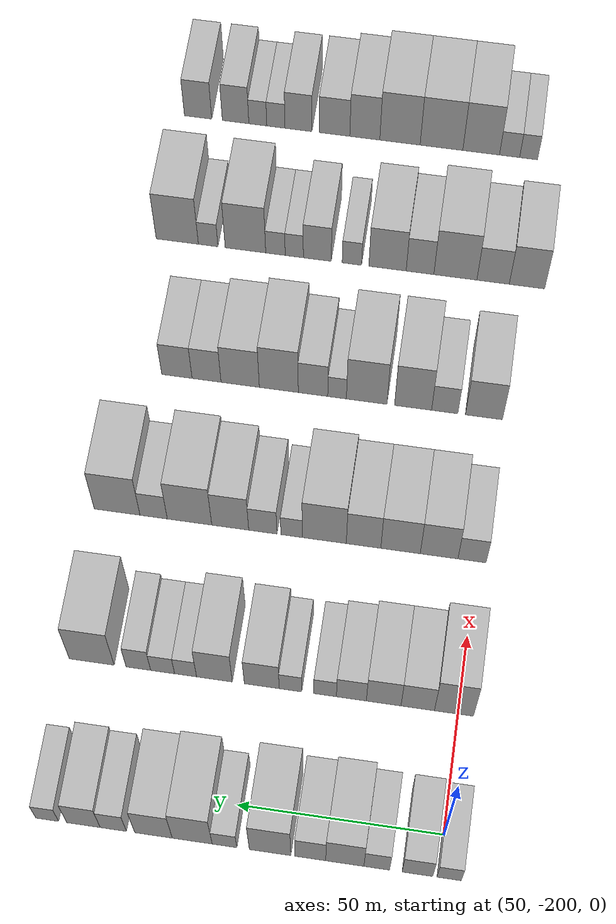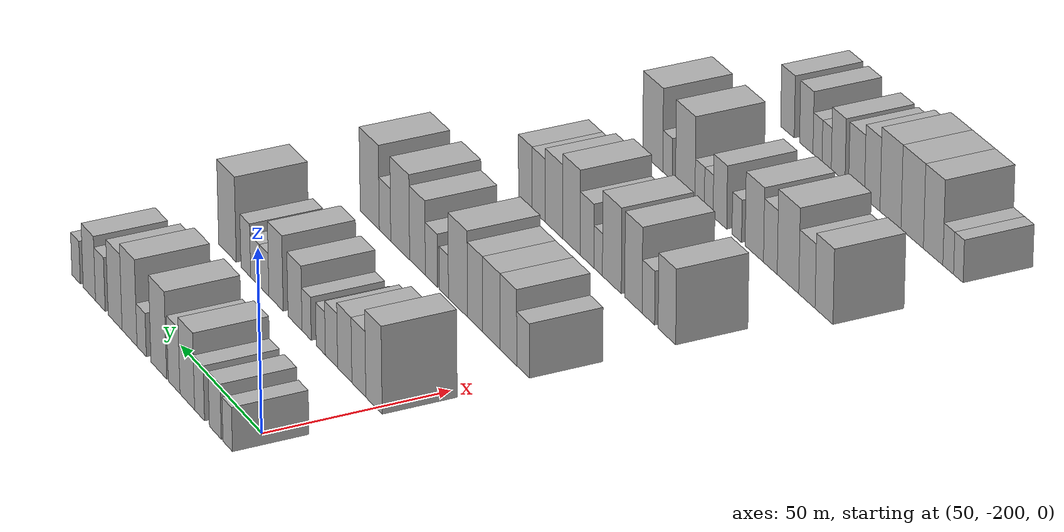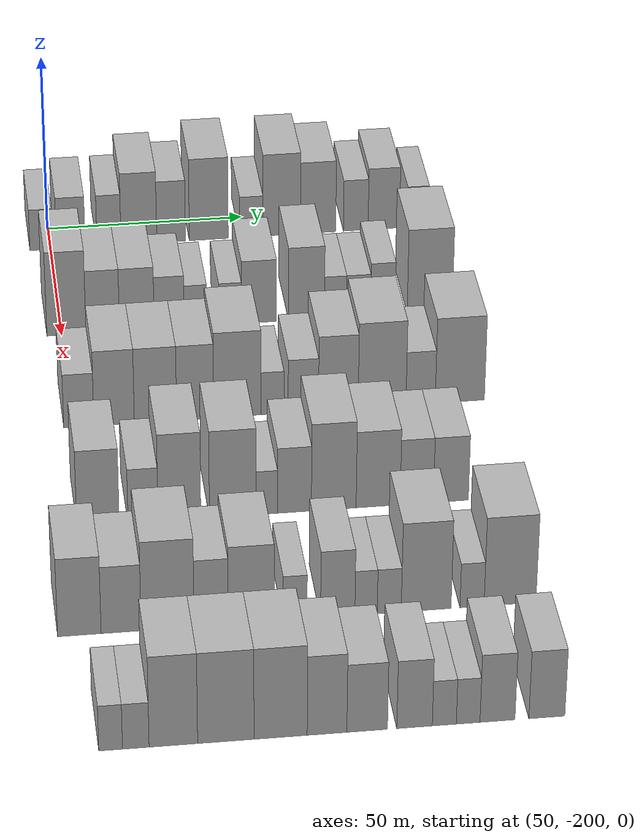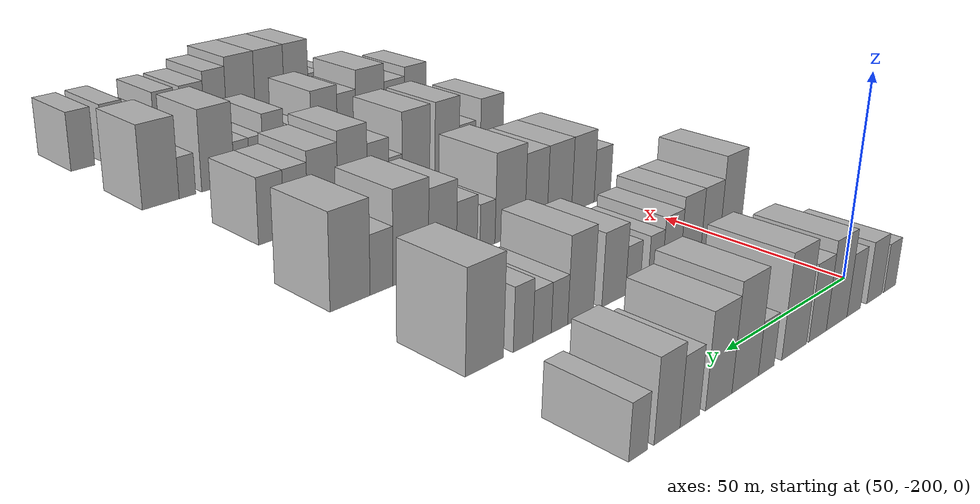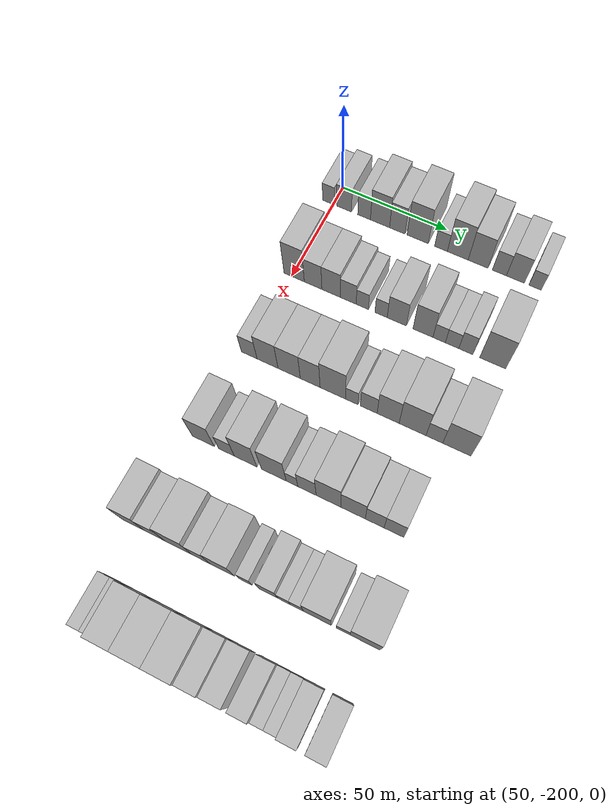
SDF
<sdf version="1.6">
 <world name="default">
  <model name="building_47">
   <static>1</static>
   <pose>50.0000 -202.3374 0 0.000000 0.000000 0.000000</pose>
   <link name="link">
    <pose>0 0 6.00 0 0 0</pose>
    <collision name="collision"><geometry><box><size>20.0000 5.7810 12.0000</size></box></geometry></collision>
    <visual name="visual">
     <cast_shadows>0</cast_shadows>
     <geometry><box><size>20.0000 5.7810 12.0000</size></box></geometry>
     <material>
      <script>
       <uri>model://HANNAS_wall/materials/scripts</uri>
       <uri>model://HANNAS_wall/materials/textures</uri>
       <name>vrc/HANNAS_wall</name>
      </script>
     </material>
    </visual>
   </link>
  </model>
  <model name="building_48">
   <static>1</static>
   <pose>50.0000 -194.7941 0 0.000000 0.000000 0.000000</pose>
   <link name="link">
    <pose>0 0 7.50 0 0 0</pose>
    <collision name="collision"><geometry><box><size>20.0000 7.3055 15.0000</size></box></geometry></collision>
    <visual name="visual">
     <cast_shadows>0</cast_shadows>
     <geometry><box><size>20.0000 7.3055 15.0000</size></box></geometry>
     <material>
      <script>
       <uri>model://HANNAS_wall/materials/scripts</uri>
       <uri>model://HANNAS_wall/materials/textures</uri>
       <name>vrc/HANNAS_wall</name>
      </script>
     </material>
    </visual>
   </link>
  </model>
  <model name="building_49">
   <static>1</static>
   <pose>50.0000 -185.0760 0 0.000000 0.000000 0.000000</pose>
   <link name="link">
    <pose>0 0 7.50 0 0 0</pose>
    <collision name="collision"><geometry><box><size>20.0000 6.1306 15.0000</size></box></geometry></collision>
    <visual name="visual">
     <cast_shadows>0</cast_shadows>
     <geometry><box><size>20.0000 6.1306 15.0000</size></box></geometry>
     <material>
      <script>
       <uri>model://HANNAS_wall/materials/scripts</uri>
       <uri>model://HANNAS_wall/materials/textures</uri>
       <name>vrc/HANNAS_wall</name>
      </script>
     </material>
    </visual>
   </link>
  </model>
  <model name="building_50">
   <static>1</static>
   <pose>50.0000 -177.4437 0 0.000000 0.000000 0.000000</pose>
   <link name="link">
    <pose>0 0 10.50 0 0 0</pose>
    <collision name="collision"><geometry><box><size>20.0000 9.1340 21.0000</size></box></geometry></collision>
    <visual name="visual">
     <cast_shadows>0</cast_shadows>
     <geometry><box><size>20.0000 9.1340 21.0000</size></box></geometry>
     <material>
      <script>
       <uri>model://HANNAS_wall/materials/scripts</uri>
       <uri>model://HANNAS_wall/materials/textures</uri>
       <name>vrc/HANNAS_wall</name>
      </script>
     </material>
    </visual>
   </link>
  </model>
  <model name="building_51">
   <static>1</static>
   <pose>50.0000 -169.1951 0 0.000000 0.000000 0.000000</pose>
   <link name="link">
    <pose>0 0 9.00 0 0 0</pose>
    <collision name="collision"><geometry><box><size>20.0000 7.3631 18.0000</size></box></geometry></collision>
    <visual name="visual">
     <cast_shadows>0</cast_shadows>
     <geometry><box><size>20.0000 7.3631 18.0000</size></box></geometry>
     <material>
      <script>
       <uri>model://HANNAS_wall/materials/scripts</uri>
       <uri>model://HANNAS_wall/materials/textures</uri>
       <name>vrc/HANNAS_wall</name>
      </script>
     </material>
    </visual>
   </link>
  </model>
  <model name="building_52">
   <static>1</static>
   <pose>50.0000 -159.5304 0 0.000000 0.000000 0.000000</pose>
   <link name="link">
    <pose>0 0 12.00 0 0 0</pose>
    <collision name="collision"><geometry><box><size>20.0000 9.9664 24.0000</size></box></geometry></collision>
    <visual name="visual">
     <cast_shadows>0</cast_shadows>
     <geometry><box><size>20.0000 9.9664 24.0000</size></box></geometry>
     <material>
      <script>
       <uri>model://HANNAS_wall/materials/scripts</uri>
       <uri>model://HANNAS_wall/materials/textures</uri>
       <name>vrc/HANNAS_wall</name>
      </script>
     </material>
    </visual>
   </link>
  </model>
  <model name="building_53">
   <static>1</static>
   <pose>50.0000 -148.5701 0 0.000000 0.000000 0.000000</pose>
   <link name="link">
    <pose>0 0 6.00 0 0 0</pose>
    <collision name="collision"><geometry><box><size>20.0000 5.9542 12.0000</size></box></geometry></collision>
    <visual name="visual">
     <cast_shadows>0</cast_shadows>
     <geometry><box><size>20.0000 5.9542 12.0000</size></box></geometry>
     <material>
      <script>
       <uri>model://HANNAS_wall/materials/scripts</uri>
       <uri>model://HANNAS_wall/materials/textures</uri>
       <name>vrc/HANNAS_wall</name>
      </script>
     </material>
    </visual>
   </link>
  </model>
  <model name="building_54">
   <static>1</static>
   <pose>50.0000 -140.7687 0 0.000000 0.000000 0.000000</pose>
   <link name="link">
    <pose>0 0 12.00 0 0 0</pose>
    <collision name="collision"><geometry><box><size>20.0000 9.6486 24.0000</size></box></geometry></collision>
    <visual name="visual">
     <cast_shadows>0</cast_shadows>
     <geometry><box><size>20.0000 9.6486 24.0000</size></box></geometry>
     <material>
      <script>
       <uri>model://HANNAS_wall/materials/scripts</uri>
       <uri>model://HANNAS_wall/materials/textures</uri>
       <name>vrc/HANNAS_wall</name>
      </script>
     </material>
    </visual>
   </link>
  </model>
  <model name="building_55">
   <static>1</static>
   <pose>50.0000 -131.4038 0 0.000000 0.000000 0.000000</pose>
   <link name="link">
    <pose>0 0 10.50 0 0 0</pose>
    <collision name="collision"><geometry><box><size>20.0000 9.0811 21.0000</size></box></geometry></collision>
    <visual name="visual">
     <cast_shadows>0</cast_shadows>
     <geometry><box><size>20.0000 9.0811 21.0000</size></box></geometry>
     <material>
      <script>
       <uri>model://HANNAS_wall/materials/scripts</uri>
       <uri>model://HANNAS_wall/materials/textures</uri>
       <name>vrc/HANNAS_wall</name>
      </script>
     </material>
    </visual>
   </link>
  </model>
  <model name="building_56">
   <static>1</static>
   <pose>50.0000 -121.6755 0 0.000000 0.000000 0.000000</pose>
   <link name="link">
    <pose>0 0 7.50 0 0 0</pose>
    <collision name="collision"><geometry><box><size>20.0000 6.3754 15.0000</size></box></geometry></collision>
    <visual name="visual">
     <cast_shadows>0</cast_shadows>
     <geometry><box><size>20.0000 6.3754 15.0000</size></box></geometry>
     <material>
      <script>
       <uri>model://HANNAS_wall/materials/scripts</uri>
       <uri>model://HANNAS_wall/materials/textures</uri>
       <name>vrc/HANNAS_wall</name>
      </script>
     </material>
    </visual>
   </link>
  </model>
  <model name="building_57">
   <static>1</static>
   <pose>50.0000 -114.4243 0 0.000000 0.000000 0.000000</pose>
   <link name="link">
    <pose>0 0 9.00 0 0 0</pose>
    <collision name="collision"><geometry><box><size>20.0000 8.1271 18.0000</size></box></geometry></collision>
    <visual name="visual">
     <cast_shadows>0</cast_shadows>
     <geometry><box><size>20.0000 8.1271 18.0000</size></box></geometry>
     <material>
      <script>
       <uri>model://HANNAS_wall/materials/scripts</uri>
       <uri>model://HANNAS_wall/materials/textures</uri>
       <name>vrc/HANNAS_wall</name>
      </script>
     </material>
    </visual>
   </link>
  </model>
  <model name="building_58">
   <static>1</static>
   <pose>50.0000 -105.5826 0 0.000000 0.000000 0.000000</pose>
   <link name="link">
    <pose>0 0 6.00 0 0 0</pose>
    <collision name="collision"><geometry><box><size>20.0000 5.5562 12.0000</size></box></geometry></collision>
    <visual name="visual">
     <cast_shadows>0</cast_shadows>
     <geometry><box><size>20.0000 5.5562 12.0000</size></box></geometry>
     <material>
      <script>
       <uri>model://HANNAS_wall/materials/scripts</uri>
       <uri>model://HANNAS_wall/materials/textures</uri>
       <name>vrc/HANNAS_wall</name>
      </script>
     </material>
    </visual>
   </link>
  </model>
  <model name="building_185">
   <static>1</static>
   <pose>90.0000 -198.8361 0 0.000000 0.000000 0.000000</pose>
   <link name="link">
    <pose>0 0 12.00 0 0 0</pose>
    <collision name="collision"><geometry><box><size>20.0000 9.6117 24.0000</size></box></geometry></collision>
    <visual name="visual">
     <cast_shadows>0</cast_shadows>
     <geometry><box><size>20.0000 9.6117 24.0000</size></box></geometry>
     <material>
      <script>
       <uri>model://HANNAS_wall/materials/scripts</uri>
       <uri>model://HANNAS_wall/materials/textures</uri>
       <name>vrc/HANNAS_wall</name>
      </script>
     </material>
    </visual>
   </link>
  </model>
  <model name="building_186">
   <static>1</static>
   <pose>90.0000 -189.9027 0 0.000000 0.000000 0.000000</pose>
   <link name="link">
    <pose>0 0 9.00 0 0 0</pose>
    <collision name="collision"><geometry><box><size>20.0000 8.2553 18.0000</size></box></geometry></collision>
    <visual name="visual">
     <cast_shadows>0</cast_shadows>
     <geometry><box><size>20.0000 8.2553 18.0000</size></box></geometry>
     <material>
      <script>
       <uri>model://HANNAS_wall/materials/scripts</uri>
       <uri>model://HANNAS_wall/materials/textures</uri>
       <name>vrc/HANNAS_wall</name>
      </script>
     </material>
    </visual>
   </link>
  </model>
  <model name="building_187">
   <static>1</static>
   <pose>90.0000 -181.4926 0 0.000000 0.000000 0.000000</pose>
   <link name="link">
    <pose>0 0 9.00 0 0 0</pose>
    <collision name="collision"><geometry><box><size>20.0000 8.5650 18.0000</size></box></geometry></collision>
    <visual name="visual">
     <cast_shadows>0</cast_shadows>
     <geometry><box><size>20.0000 8.5650 18.0000</size></box></geometry>
     <material>
      <script>
       <uri>model://HANNAS_wall/materials/scripts</uri>
       <uri>model://HANNAS_wall/materials/textures</uri>
       <name>vrc/HANNAS_wall</name>
      </script>
     </material>
    </visual>
   </link>
  </model>
  <model name="building_188">
   <static>1</static>
   <pose>90.0000 -173.5061 0 0.000000 0.000000 0.000000</pose>
   <link name="link">
    <pose>0 0 7.50 0 0 0</pose>
    <collision name="collision"><geometry><box><size>20.0000 7.4079 15.0000</size></box></geometry></collision>
    <visual name="visual">
     <cast_shadows>0</cast_shadows>
     <geometry><box><size>20.0000 7.4079 15.0000</size></box></geometry>
     <material>
      <script>
       <uri>model://HANNAS_wall/materials/scripts</uri>
       <uri>model://HANNAS_wall/materials/textures</uri>
       <name>vrc/HANNAS_wall</name>
      </script>
     </material>
    </visual>
   </link>
  </model>
  <model name="building_189">
   <static>1</static>
   <pose>90.0000 -166.9955 0 0.000000 0.000000 0.000000</pose>
   <link name="link">
    <pose>0 0 6.00 0 0 0</pose>
    <collision name="collision"><geometry><box><size>20.0000 5.6134 12.0000</size></box></geometry></collision>
    <visual name="visual">
     <cast_shadows>0</cast_shadows>
     <geometry><box><size>20.0000 5.6134 12.0000</size></box></geometry>
     <material>
      <script>
       <uri>model://HANNAS_wall/materials/scripts</uri>
       <uri>model://HANNAS_wall/materials/textures</uri>
       <name>vrc/HANNAS_wall</name>
      </script>
     </material>
    </visual>
   </link>
  </model>
  <model name="building_190">
   <static>1</static>
   <pose>90.0000 -158.3928 0 0.000000 0.000000 0.000000</pose>
   <link name="link">
    <pose>0 0 6.00 0 0 0</pose>
    <collision name="collision"><geometry><box><size>20.0000 5.5920 12.0000</size></box></geometry></collision>
    <visual name="visual">
     <cast_shadows>0</cast_shadows>
     <geometry><box><size>20.0000 5.5920 12.0000</size></box></geometry>
     <material>
      <script>
       <uri>model://HANNAS_wall/materials/scripts</uri>
       <uri>model://HANNAS_wall/materials/textures</uri>
       <name>vrc/HANNAS_wall</name>
      </script>
     </material>
    </visual>
   </link>
  </model>
  <model name="building_191">
   <static>1</static>
   <pose>90.0000 -151.2549 0 0.000000 0.000000 0.000000</pose>
   <link name="link">
    <pose>0 0 9.00 0 0 0</pose>
    <collision name="collision"><geometry><box><size>20.0000 8.6836 18.0000</size></box></geometry></collision>
    <visual name="visual">
     <cast_shadows>0</cast_shadows>
     <geometry><box><size>20.0000 8.6836 18.0000</size></box></geometry>
     <material>
      <script>
       <uri>model://HANNAS_wall/materials/scripts</uri>
       <uri>model://HANNAS_wall/materials/textures</uri>
       <name>vrc/HANNAS_wall</name>
      </script>
     </material>
    </visual>
   </link>
  </model>
  <model name="building_192">
   <static>1</static>
   <pose>90.0000 -139.4484 0 0.000000 0.000000 0.000000</pose>
   <link name="link">
    <pose>0 0 10.50 0 0 0</pose>
    <collision name="collision"><geometry><box><size>20.0000 8.9294 21.0000</size></box></geometry></collision>
    <visual name="visual">
     <cast_shadows>0</cast_shadows>
     <geometry><box><size>20.0000 8.9294 21.0000</size></box></geometry>
     <material>
      <script>
       <uri>model://HANNAS_wall/materials/scripts</uri>
       <uri>model://HANNAS_wall/materials/textures</uri>
       <name>vrc/HANNAS_wall</name>
      </script>
     </material>
    </visual>
   </link>
  </model>
  <model name="building_193">
   <static>1</static>
   <pose>90.0000 -132.2316 0 0.000000 0.000000 0.000000</pose>
   <link name="link">
    <pose>0 0 6.00 0 0 0</pose>
    <collision name="collision"><geometry><box><size>20.0000 5.5043 12.0000</size></box></geometry></collision>
    <visual name="visual">
     <cast_shadows>0</cast_shadows>
     <geometry><box><size>20.0000 5.5043 12.0000</size></box></geometry>
     <material>
      <script>
       <uri>model://HANNAS_wall/materials/scripts</uri>
       <uri>model://HANNAS_wall/materials/textures</uri>
       <name>vrc/HANNAS_wall</name>
      </script>
     </material>
    </visual>
   </link>
  </model>
  <model name="building_194">
   <static>1</static>
   <pose>90.0000 -126.4811 0 0.000000 0.000000 0.000000</pose>
   <link name="link">
    <pose>0 0 6.00 0 0 0</pose>
    <collision name="collision"><geometry><box><size>20.0000 5.9968 12.0000</size></box></geometry></collision>
    <visual name="visual">
     <cast_shadows>0</cast_shadows>
     <geometry><box><size>20.0000 5.9968 12.0000</size></box></geometry>
     <material>
      <script>
       <uri>model://HANNAS_wall/materials/scripts</uri>
       <uri>model://HANNAS_wall/materials/textures</uri>
       <name>vrc/HANNAS_wall</name>
      </script>
     </material>
    </visual>
   </link>
  </model>
  <model name="building_195">
   <static>1</static>
   <pose>90.0000 -120.4056 0 0.000000 0.000000 0.000000</pose>
   <link name="link">
    <pose>0 0 7.50 0 0 0</pose>
    <collision name="collision"><geometry><box><size>20.0000 6.1540 15.0000</size></box></geometry></collision>
    <visual name="visual">
     <cast_shadows>0</cast_shadows>
     <geometry><box><size>20.0000 6.1540 15.0000</size></box></geometry>
     <material>
      <script>
       <uri>model://HANNAS_wall/materials/scripts</uri>
       <uri>model://HANNAS_wall/materials/textures</uri>
       <name>vrc/HANNAS_wall</name>
      </script>
     </material>
    </visual>
   </link>
  </model>
  <model name="building_196">
   <static>1</static>
   <pose>90.0000 -108.6854 0 0.000000 0.000000 0.000000</pose>
   <link name="link">
    <pose>0 0 12.00 0 0 0</pose>
    <collision name="collision"><geometry><box><size>20.0000 11.2864 24.0000</size></box></geometry></collision>
    <visual name="visual">
     <cast_shadows>0</cast_shadows>
     <geometry><box><size>20.0000 11.2864 24.0000</size></box></geometry>
     <material>
      <script>
       <uri>model://HANNAS_wall/materials/scripts</uri>
       <uri>model://HANNAS_wall/materials/textures</uri>
       <name>vrc/HANNAS_wall</name>
      </script>
     </material>
    </visual>
   </link>
  </model>
  <model name="building_322">
   <static>1</static>
   <pose>130.0000 -198.7988 0 0.000000 0.000000 0.000000</pose>
   <link name="link">
    <pose>0 0 7.50 0 0 0</pose>
    <collision name="collision"><geometry><box><size>20.0000 7.1736 15.0000</size></box></geometry></collision>
    <visual name="visual">
     <cast_shadows>0</cast_shadows>
     <geometry><box><size>20.0000 7.1736 15.0000</size></box></geometry>
     <material>
      <script>
       <uri>model://HANNAS_wall/materials/scripts</uri>
       <uri>model://HANNAS_wall/materials/textures</uri>
       <name>vrc/HANNAS_wall</name>
      </script>
     </material>
    </visual>
   </link>
  </model>
  <model name="building_323">
   <static>1</static>
   <pose>130.0000 -190.4127 0 0.000000 0.000000 0.000000</pose>
   <link name="link">
    <pose>0 0 10.50 0 0 0</pose>
    <collision name="collision"><geometry><box><size>20.0000 9.5984 21.0000</size></box></geometry></collision>
    <visual name="visual">
     <cast_shadows>0</cast_shadows>
     <geometry><box><size>20.0000 9.5984 21.0000</size></box></geometry>
     <material>
      <script>
       <uri>model://HANNAS_wall/materials/scripts</uri>
       <uri>model://HANNAS_wall/materials/textures</uri>
       <name>vrc/HANNAS_wall</name>
      </script>
     </material>
    </visual>
   </link>
  </model>
  <model name="building_324">
   <static>1</static>
   <pose>130.0000 -180.5781 0 0.000000 0.000000 0.000000</pose>
   <link name="link">
    <pose>0 0 10.50 0 0 0</pose>
    <collision name="collision"><geometry><box><size>20.0000 10.0708 21.0000</size></box></geometry></collision>
    <visual name="visual">
     <cast_shadows>0</cast_shadows>
     <geometry><box><size>20.0000 10.0708 21.0000</size></box></geometry>
     <material>
      <script>
       <uri>model://HANNAS_wall/materials/scripts</uri>
       <uri>model://HANNAS_wall/materials/textures</uri>
       <name>vrc/HANNAS_wall</name>
      </script>
     </material>
    </visual>
   </link>
  </model>
  <model name="building_325">
   <static>1</static>
   <pose>130.0000 -171.1222 0 0.000000 0.000000 0.000000</pose>
   <link name="link">
    <pose>0 0 10.50 0 0 0</pose>
    <collision name="collision"><geometry><box><size>20.0000 8.8410 21.0000</size></box></geometry></collision>
    <visual name="visual">
     <cast_shadows>0</cast_shadows>
     <geometry><box><size>20.0000 8.8410 21.0000</size></box></geometry>
     <material>
      <script>
       <uri>model://HANNAS_wall/materials/scripts</uri>
       <uri>model://HANNAS_wall/materials/textures</uri>
       <name>vrc/HANNAS_wall</name>
      </script>
     </material>
    </visual>
   </link>
  </model>
  <model name="building_326">
   <static>1</static>
   <pose>130.0000 -161.0546 0 0.000000 0.000000 0.000000</pose>
   <link name="link">
    <pose>0 0 12.00 0 0 0</pose>
    <collision name="collision"><geometry><box><size>20.0000 11.2940 24.0000</size></box></geometry></collision>
    <visual name="visual">
     <cast_shadows>0</cast_shadows>
     <geometry><box><size>20.0000 11.2940 24.0000</size></box></geometry>
     <material>
      <script>
       <uri>model://HANNAS_wall/materials/scripts</uri>
       <uri>model://HANNAS_wall/materials/textures</uri>
       <name>vrc/HANNAS_wall</name>
      </script>
     </material>
    </visual>
   </link>
  </model>
  <model name="building_327">
   <static>1</static>
   <pose>130.0000 -152.6547 0 0.000000 0.000000 0.000000</pose>
   <link name="link">
    <pose>0 0 6.00 0 0 0</pose>
    <collision name="collision"><geometry><box><size>20.0000 5.5058 12.0000</size></box></geometry></collision>
    <visual name="visual">
     <cast_shadows>0</cast_shadows>
     <geometry><box><size>20.0000 5.5058 12.0000</size></box></geometry>
     <material>
      <script>
       <uri>model://HANNAS_wall/materials/scripts</uri>
       <uri>model://HANNAS_wall/materials/textures</uri>
       <name>vrc/HANNAS_wall</name>
      </script>
     </material>
    </visual>
   </link>
  </model>
  <model name="building_328">
   <static>1</static>
   <pose>130.0000 -145.2543 0 0.000000 0.000000 0.000000</pose>
   <link name="link">
    <pose>0 0 7.50 0 0 0</pose>
    <collision name="collision"><geometry><box><size>20.0000 7.2951 15.0000</size></box></geometry></collision>
    <visual name="visual">
     <cast_shadows>0</cast_shadows>
     <geometry><box><size>20.0000 7.2951 15.0000</size></box></geometry>
     <material>
      <script>
       <uri>model://HANNAS_wall/materials/scripts</uri>
       <uri>model://HANNAS_wall/materials/textures</uri>
       <name>vrc/HANNAS_wall</name>
      </script>
     </material>
    </visual>
   </link>
  </model>
  <model name="building_329">
   <static>1</static>
   <pose>130.0000 -136.8446 0 0.000000 0.000000 0.000000</pose>
   <link name="link">
    <pose>0 0 10.50 0 0 0</pose>
    <collision name="collision"><geometry><box><size>20.0000 9.5242 21.0000</size></box></geometry></collision>
    <visual name="visual">
     <cast_shadows>0</cast_shadows>
     <geometry><box><size>20.0000 9.5242 21.0000</size></box></geometry>
     <material>
      <script>
       <uri>model://HANNAS_wall/materials/scripts</uri>
       <uri>model://HANNAS_wall/materials/textures</uri>
       <name>vrc/HANNAS_wall</name>
      </script>
     </material>
    </visual>
   </link>
  </model>
  <model name="building_330">
   <static>1</static>
   <pose>130.0000 -126.3219 0 0.000000 0.000000 0.000000</pose>
   <link name="link">
    <pose>0 0 12.00 0 0 0</pose>
    <collision name="collision"><geometry><box><size>20.0000 11.5212 24.0000</size></box></geometry></collision>
    <visual name="visual">
     <cast_shadows>0</cast_shadows>
     <geometry><box><size>20.0000 11.5212 24.0000</size></box></geometry>
     <material>
      <script>
       <uri>model://HANNAS_wall/materials/scripts</uri>
       <uri>model://HANNAS_wall/materials/textures</uri>
       <name>vrc/HANNAS_wall</name>
      </script>
     </material>
    </visual>
   </link>
  </model>
  <model name="building_331">
   <static>1</static>
   <pose>130.0000 -117.0253 0 0.000000 0.000000 0.000000</pose>
   <link name="link">
    <pose>0 0 7.50 0 0 0</pose>
    <collision name="collision"><geometry><box><size>20.0000 7.0721 15.0000</size></box></geometry></collision>
    <visual name="visual">
     <cast_shadows>0</cast_shadows>
     <geometry><box><size>20.0000 7.0721 15.0000</size></box></geometry>
     <material>
      <script>
       <uri>model://HANNAS_wall/materials/scripts</uri>
       <uri>model://HANNAS_wall/materials/textures</uri>
       <name>vrc/HANNAS_wall</name>
      </script>
     </material>
    </visual>
   </link>
  </model>
  <model name="building_332">
   <static>1</static>
   <pose>130.0000 -107.5536 0 0.000000 0.000000 0.000000</pose>
   <link name="link">
    <pose>0 0 12.00 0 0 0</pose>
    <collision name="collision"><geometry><box><size>20.0000 11.8712 24.0000</size></box></geometry></collision>
    <visual name="visual">
     <cast_shadows>0</cast_shadows>
     <geometry><box><size>20.0000 11.8712 24.0000</size></box></geometry>
     <material>
      <script>
       <uri>model://HANNAS_wall/materials/scripts</uri>
       <uri>model://HANNAS_wall/materials/textures</uri>
       <name>vrc/HANNAS_wall</name>
      </script>
     </material>
    </visual>
   </link>
  </model>
  <model name="building_459">
   <static>1</static>
   <pose>170.0000 -197.4435 0 0.000000 0.000000 0.000000</pose>
   <link name="link">
    <pose>0 0 10.50 0 0 0</pose>
    <collision name="collision"><geometry><box><size>20.0000 9.7113 21.0000</size></box></geometry></collision>
    <visual name="visual">
     <cast_shadows>0</cast_shadows>
     <geometry><box><size>20.0000 9.7113 21.0000</size></box></geometry>
     <material>
      <script>
       <uri>model://HANNAS_wall/materials/scripts</uri>
       <uri>model://HANNAS_wall/materials/textures</uri>
       <name>vrc/HANNAS_wall</name>
      </script>
     </material>
    </visual>
   </link>
  </model>
  <model name="building_460">
   <static>1</static>
   <pose>170.0000 -187.1342 0 0.000000 0.000000 0.000000</pose>
   <link name="link">
    <pose>0 0 7.50 0 0 0</pose>
    <collision name="collision"><geometry><box><size>20.0000 6.9074 15.0000</size></box></geometry></collision>
    <visual name="visual">
     <cast_shadows>0</cast_shadows>
     <geometry><box><size>20.0000 6.9074 15.0000</size></box></geometry>
     <material>
      <script>
       <uri>model://HANNAS_wall/materials/scripts</uri>
       <uri>model://HANNAS_wall/materials/textures</uri>
       <name>vrc/HANNAS_wall</name>
      </script>
     </material>
    </visual>
   </link>
  </model>
  <model name="building_461">
   <static>1</static>
   <pose>170.0000 -178.7904 0 0.000000 0.000000 0.000000</pose>
   <link name="link">
    <pose>0 0 12.00 0 0 0</pose>
    <collision name="collision"><geometry><box><size>20.0000 9.7803 24.0000</size></box></geometry></collision>
    <visual name="visual">
     <cast_shadows>0</cast_shadows>
     <geometry><box><size>20.0000 9.7803 24.0000</size></box></geometry>
     <material>
      <script>
       <uri>model://HANNAS_wall/materials/scripts</uri>
       <uri>model://HANNAS_wall/materials/textures</uri>
       <name>vrc/HANNAS_wall</name>
      </script>
     </material>
    </visual>
   </link>
  </model>
  <model name="building_462">
   <static>1</static>
   <pose>170.0000 -166.5350 0 0.000000 0.000000 0.000000</pose>
   <link name="link">
    <pose>0 0 12.00 0 0 0</pose>
    <collision name="collision"><geometry><box><size>20.0000 10.7304 24.0000</size></box></geometry></collision>
    <visual name="visual">
     <cast_shadows>0</cast_shadows>
     <geometry><box><size>20.0000 10.7304 24.0000</size></box></geometry>
     <material>
      <script>
       <uri>model://HANNAS_wall/materials/scripts</uri>
       <uri>model://HANNAS_wall/materials/textures</uri>
       <name>vrc/HANNAS_wall</name>
      </script>
     </material>
    </visual>
   </link>
  </model>
  <model name="building_463">
   <static>1</static>
   <pose>170.0000 -158.7007 0 0.000000 0.000000 0.000000</pose>
   <link name="link">
    <pose>0 0 6.00 0 0 0</pose>
    <collision name="collision"><geometry><box><size>20.0000 4.9381 12.0000</size></box></geometry></collision>
    <visual name="visual">
     <cast_shadows>0</cast_shadows>
     <geometry><box><size>20.0000 4.9381 12.0000</size></box></geometry>
     <material>
      <script>
       <uri>model://HANNAS_wall/materials/scripts</uri>
       <uri>model://HANNAS_wall/materials/textures</uri>
       <name>vrc/HANNAS_wall</name>
      </script>
     </material>
    </visual>
   </link>
  </model>
  <model name="building_464">
   <static>1</static>
   <pose>170.0000 -152.3244 0 0.000000 0.000000 0.000000</pose>
   <link name="link">
    <pose>0 0 9.00 0 0 0</pose>
    <collision name="collision"><geometry><box><size>20.0000 7.8145 18.0000</size></box></geometry></collision>
    <visual name="visual">
     <cast_shadows>0</cast_shadows>
     <geometry><box><size>20.0000 7.8145 18.0000</size></box></geometry>
     <material>
      <script>
       <uri>model://HANNAS_wall/materials/scripts</uri>
       <uri>model://HANNAS_wall/materials/textures</uri>
       <name>vrc/HANNAS_wall</name>
      </script>
     </material>
    </visual>
   </link>
  </model>
  <model name="building_465">
   <static>1</static>
   <pose>170.0000 -143.2387 0 0.000000 0.000000 0.000000</pose>
   <link name="link">
    <pose>0 0 12.00 0 0 0</pose>
    <collision name="collision"><geometry><box><size>20.0000 10.3570 24.0000</size></box></geometry></collision>
    <visual name="visual">
     <cast_shadows>0</cast_shadows>
     <geometry><box><size>20.0000 10.3570 24.0000</size></box></geometry>
     <material>
      <script>
       <uri>model://HANNAS_wall/materials/scripts</uri>
       <uri>model://HANNAS_wall/materials/textures</uri>
       <name>vrc/HANNAS_wall</name>
      </script>
     </material>
    </visual>
   </link>
  </model>
  <model name="building_466">
   <static>1</static>
   <pose>170.0000 -132.9571 0 0.000000 0.000000 0.000000</pose>
   <link name="link">
    <pose>0 0 10.50 0 0 0</pose>
    <collision name="collision"><geometry><box><size>20.0000 10.2062 21.0000</size></box></geometry></collision>
    <visual name="visual">
     <cast_shadows>0</cast_shadows>
     <geometry><box><size>20.0000 10.2062 21.0000</size></box></geometry>
     <material>
      <script>
       <uri>model://HANNAS_wall/materials/scripts</uri>
       <uri>model://HANNAS_wall/materials/textures</uri>
       <name>vrc/HANNAS_wall</name>
      </script>
     </material>
    </visual>
   </link>
  </model>
  <model name="building_467">
   <static>1</static>
   <pose>170.0000 -123.9863 0 0.000000 0.000000 0.000000</pose>
   <link name="link">
    <pose>0 0 9.00 0 0 0</pose>
    <collision name="collision"><geometry><box><size>20.0000 7.7355 18.0000</size></box></geometry></collision>
    <visual name="visual">
     <cast_shadows>0</cast_shadows>
     <geometry><box><size>20.0000 7.7355 18.0000</size></box></geometry>
     <material>
      <script>
       <uri>model://HANNAS_wall/materials/scripts</uri>
       <uri>model://HANNAS_wall/materials/textures</uri>
       <name>vrc/HANNAS_wall</name>
      </script>
     </material>
    </visual>
   </link>
  </model>
  <model name="building_468">
   <static>1</static>
   <pose>170.0000 -116.0584 0 0.000000 0.000000 0.000000</pose>
   <link name="link">
    <pose>0 0 9.00 0 0 0</pose>
    <collision name="collision"><geometry><box><size>20.0000 8.1202 18.0000</size></box></geometry></collision>
    <visual name="visual">
     <cast_shadows>0</cast_shadows>
     <geometry><box><size>20.0000 8.1202 18.0000</size></box></geometry>
     <material>
      <script>
       <uri>model://HANNAS_wall/materials/scripts</uri>
       <uri>model://HANNAS_wall/materials/textures</uri>
       <name>vrc/HANNAS_wall</name>
      </script>
     </material>
    </visual>
   </link>
  </model>
  <model name="building_593">
   <static>1</static>
   <pose>210.0000 -204.7215 0 0.000000 0.000000 0.000000</pose>
   <link name="link">
    <pose>0 0 10.50 0 0 0</pose>
    <collision name="collision"><geometry><box><size>20.0000 9.5605 21.0000</size></box></geometry></collision>
    <visual name="visual">
     <cast_shadows>0</cast_shadows>
     <geometry><box><size>20.0000 9.5605 21.0000</size></box></geometry>
     <material>
      <script>
       <uri>model://HANNAS_wall/materials/scripts</uri>
       <uri>model://HANNAS_wall/materials/textures</uri>
       <name>vrc/HANNAS_wall</name>
      </script>
     </material>
    </visual>
   </link>
  </model>
  <model name="building_594">
   <static>1</static>
   <pose>210.0000 -195.5447 0 0.000000 0.000000 0.000000</pose>
   <link name="link">
    <pose>0 0 9.00 0 0 0</pose>
    <collision name="collision"><geometry><box><size>20.0000 8.7932 18.0000</size></box></geometry></collision>
    <visual name="visual">
     <cast_shadows>0</cast_shadows>
     <geometry><box><size>20.0000 8.7932 18.0000</size></box></geometry>
     <material>
      <script>
       <uri>model://HANNAS_wall/materials/scripts</uri>
       <uri>model://HANNAS_wall/materials/textures</uri>
       <name>vrc/HANNAS_wall</name>
      </script>
     </material>
    </visual>
   </link>
  </model>
  <model name="building_595">
   <static>1</static>
   <pose>210.0000 -185.3082 0 0.000000 0.000000 0.000000</pose>
   <link name="link">
    <pose>0 0 12.00 0 0 0</pose>
    <collision name="collision"><geometry><box><size>20.0000 11.6798 24.0000</size></box></geometry></collision>
    <visual name="visual">
     <cast_shadows>0</cast_shadows>
     <geometry><box><size>20.0000 11.6798 24.0000</size></box></geometry>
     <material>
      <script>
       <uri>model://HANNAS_wall/materials/scripts</uri>
       <uri>model://HANNAS_wall/materials/textures</uri>
       <name>vrc/HANNAS_wall</name>
      </script>
     </material>
    </visual>
   </link>
  </model>
  <model name="building_596">
   <static>1</static>
   <pose>210.0000 -175.6978 0 0.000000 0.000000 0.000000</pose>
   <link name="link">
    <pose>0 0 9.00 0 0 0</pose>
    <collision name="collision"><geometry><box><size>20.0000 7.5409 18.0000</size></box></geometry></collision>
    <visual name="visual">
     <cast_shadows>0</cast_shadows>
     <geometry><box><size>20.0000 7.5409 18.0000</size></box></geometry>
     <material>
      <script>
       <uri>model://HANNAS_wall/materials/scripts</uri>
       <uri>model://HANNAS_wall/materials/textures</uri>
       <name>vrc/HANNAS_wall</name>
      </script>
     </material>
    </visual>
   </link>
  </model>
  <model name="building_597">
   <static>1</static>
   <pose>210.0000 -166.8463 0 0.000000 0.000000 0.000000</pose>
   <link name="link">
    <pose>0 0 10.50 0 0 0</pose>
    <collision name="collision"><geometry><box><size>20.0000 10.1621 21.0000</size></box></geometry></collision>
    <visual name="visual">
     <cast_shadows>0</cast_shadows>
     <geometry><box><size>20.0000 10.1621 21.0000</size></box></geometry>
     <material>
      <script>
       <uri>model://HANNAS_wall/materials/scripts</uri>
       <uri>model://HANNAS_wall/materials/textures</uri>
       <name>vrc/HANNAS_wall</name>
      </script>
     </material>
    </visual>
   </link>
  </model>
  <model name="building_598">
   <static>1</static>
   <pose>210.0000 -157.1187 0 0.000000 0.000000 0.000000</pose>
   <link name="link">
    <pose>0 0 6.00 0 0 0</pose>
    <collision name="collision"><geometry><box><size>20.0000 5.2932 12.0000</size></box></geometry></collision>
    <visual name="visual">
     <cast_shadows>0</cast_shadows>
     <geometry><box><size>20.0000 5.2932 12.0000</size></box></geometry>
     <material>
      <script>
       <uri>model://HANNAS_wall/materials/scripts</uri>
       <uri>model://HANNAS_wall/materials/textures</uri>
       <name>vrc/HANNAS_wall</name>
      </script>
     </material>
    </visual>
   </link>
  </model>
  <model name="building_599">
   <static>1</static>
   <pose>210.0000 -147.6497 0 0.000000 0.000000 0.000000</pose>
   <link name="link">
    <pose>0 0 9.00 0 0 0</pose>
    <collision name="collision"><geometry><box><size>20.0000 7.6448 18.0000</size></box></geometry></collision>
    <visual name="visual">
     <cast_shadows>0</cast_shadows>
     <geometry><box><size>20.0000 7.6448 18.0000</size></box></geometry>
     <material>
      <script>
       <uri>model://HANNAS_wall/materials/scripts</uri>
       <uri>model://HANNAS_wall/materials/textures</uri>
       <name>vrc/HANNAS_wall</name>
      </script>
     </material>
    </visual>
   </link>
  </model>
  <model name="building_600">
   <static>1</static>
   <pose>210.0000 -141.3430 0 0.000000 0.000000 0.000000</pose>
   <link name="link">
    <pose>0 0 6.00 0 0 0</pose>
    <collision name="collision"><geometry><box><size>20.0000 4.9686 12.0000</size></box></geometry></collision>
    <visual name="visual">
     <cast_shadows>0</cast_shadows>
     <geometry><box><size>20.0000 4.9686 12.0000</size></box></geometry>
     <material>
      <script>
       <uri>model://HANNAS_wall/materials/scripts</uri>
       <uri>model://HANNAS_wall/materials/textures</uri>
       <name>vrc/HANNAS_wall</name>
      </script>
     </material>
    </visual>
   </link>
  </model>
  <model name="building_601">
   <static>1</static>
   <pose>210.0000 -136.1842 0 0.000000 0.000000 0.000000</pose>
   <link name="link">
    <pose>0 0 6.00 0 0 0</pose>
    <collision name="collision"><geometry><box><size>20.0000 5.3491 12.0000</size></box></geometry></collision>
    <visual name="visual">
     <cast_shadows>0</cast_shadows>
     <geometry><box><size>20.0000 5.3491 12.0000</size></box></geometry>
     <material>
      <script>
       <uri>model://HANNAS_wall/materials/scripts</uri>
       <uri>model://HANNAS_wall/materials/textures</uri>
       <name>vrc/HANNAS_wall</name>
      </script>
     </material>
    </visual>
   </link>
  </model>
  <model name="building_602">
   <static>1</static>
   <pose>210.0000 -127.9387 0 0.000000 0.000000 0.000000</pose>
   <link name="link">
    <pose>0 0 12.00 0 0 0</pose>
    <collision name="collision"><geometry><box><size>20.0000 11.1418 24.0000</size></box></geometry></collision>
    <visual name="visual">
     <cast_shadows>0</cast_shadows>
     <geometry><box><size>20.0000 11.1418 24.0000</size></box></geometry>
     <material>
      <script>
       <uri>model://HANNAS_wall/materials/scripts</uri>
       <uri>model://HANNAS_wall/materials/textures</uri>
       <name>vrc/HANNAS_wall</name>
      </script>
     </material>
    </visual>
   </link>
  </model>
  <model name="building_603">
   <static>1</static>
   <pose>210.0000 -117.6690 0 0.000000 0.000000 0.000000</pose>
   <link name="link">
    <pose>0 0 6.00 0 0 0</pose>
    <collision name="collision"><geometry><box><size>20.0000 5.3976 12.0000</size></box></geometry></collision>
    <visual name="visual">
     <cast_shadows>0</cast_shadows>
     <geometry><box><size>20.0000 5.3976 12.0000</size></box></geometry>
     <material>
      <script>
       <uri>model://HANNAS_wall/materials/scripts</uri>
       <uri>model://HANNAS_wall/materials/textures</uri>
       <name>vrc/HANNAS_wall</name>
      </script>
     </material>
    </visual>
   </link>
  </model>
  <model name="building_604">
   <static>1</static>
   <pose>210.0000 -109.1534 0 0.000000 0.000000 0.000000</pose>
   <link name="link">
    <pose>0 0 12.00 0 0 0</pose>
    <collision name="collision"><geometry><box><size>20.0000 11.6335 24.0000</size></box></geometry></collision>
    <visual name="visual">
     <cast_shadows>0</cast_shadows>
     <geometry><box><size>20.0000 11.6335 24.0000</size></box></geometry>
     <material>
      <script>
       <uri>model://HANNAS_wall/materials/scripts</uri>
       <uri>model://HANNAS_wall/materials/textures</uri>
       <name>vrc/HANNAS_wall</name>
      </script>
     </material>
    </visual>
   </link>
  </model>
  <model name="building_739">
   <static>1</static>
   <pose>250.0000 -201.1632 0 0.000000 0.000000 0.000000</pose>
   <link name="link">
    <pose>0 0 6.00 0 0 0</pose>
    <collision name="collision"><geometry><box><size>20.0000 4.9992 12.0000</size></box></geometry></collision>
    <visual name="visual">
     <cast_shadows>0</cast_shadows>
     <geometry><box><size>20.0000 4.9992 12.0000</size></box></geometry>
     <material>
      <script>
       <uri>model://HANNAS_wall/materials/scripts</uri>
       <uri>model://HANNAS_wall/materials/textures</uri>
       <name>vrc/HANNAS_wall</name>
      </script>
     </material>
    </visual>
   </link>
  </model>
  <model name="building_740">
   <static>1</static>
   <pose>250.0000 -195.8553 0 0.000000 0.000000 0.000000</pose>
   <link name="link">
    <pose>0 0 6.00 0 0 0</pose>
    <collision name="collision"><geometry><box><size>20.0000 5.6166 12.0000</size></box></geometry></collision>
    <visual name="visual">
     <cast_shadows>0</cast_shadows>
     <geometry><box><size>20.0000 5.6166 12.0000</size></box></geometry>
     <material>
      <script>
       <uri>model://HANNAS_wall/materials/scripts</uri>
       <uri>model://HANNAS_wall/materials/textures</uri>
       <name>vrc/HANNAS_wall</name>
      </script>
     </material>
    </visual>
   </link>
  </model>
  <model name="building_741">
   <static>1</static>
   <pose>250.0000 -187.9091 0 0.000000 0.000000 0.000000</pose>
   <link name="link">
    <pose>0 0 12.00 0 0 0</pose>
    <collision name="collision"><geometry><box><size>20.0000 10.2757 24.0000</size></box></geometry></collision>
    <visual name="visual">
     <cast_shadows>0</cast_shadows>
     <geometry><box><size>20.0000 10.2757 24.0000</size></box></geometry>
     <material>
      <script>
       <uri>model://HANNAS_wall/materials/scripts</uri>
       <uri>model://HANNAS_wall/materials/textures</uri>
       <name>vrc/HANNAS_wall</name>
      </script>
     </material>
    </visual>
   </link>
  </model>
  <model name="building_742">
   <static>1</static>
   <pose>250.0000 -176.7878 0 0.000000 0.000000 0.000000</pose>
   <link name="link">
    <pose>0 0 12.00 0 0 0</pose>
    <collision name="collision"><geometry><box><size>20.0000 11.9669 24.0000</size></box></geometry></collision>
    <visual name="visual">
     <cast_shadows>0</cast_shadows>
     <geometry><box><size>20.0000 11.9669 24.0000</size></box></geometry>
     <material>
      <script>
       <uri>model://HANNAS_wall/materials/scripts</uri>
       <uri>model://HANNAS_wall/materials/textures</uri>
       <name>vrc/HANNAS_wall</name>
      </script>
     </material>
    </visual>
   </link>
  </model>
  <model name="building_743">
   <static>1</static>
   <pose>250.0000 -165.1405 0 0.000000 0.000000 0.000000</pose>
   <link name="link">
    <pose>0 0 12.00 0 0 0</pose>
    <collision name="collision"><geometry><box><size>20.0000 11.3279 24.0000</size></box></geometry></collision>
    <visual name="visual">
     <cast_shadows>0</cast_shadows>
     <geometry><box><size>20.0000 11.3279 24.0000</size></box></geometry>
     <material>
      <script>
       <uri>model://HANNAS_wall/materials/scripts</uri>
       <uri>model://HANNAS_wall/materials/textures</uri>
       <name>vrc/HANNAS_wall</name>
      </script>
     </material>
    </visual>
   </link>
  </model>
  <model name="building_744">
   <static>1</static>
   <pose>250.0000 -155.2492 0 0.000000 0.000000 0.000000</pose>
   <link name="link">
    <pose>0 0 10.50 0 0 0</pose>
    <collision name="collision"><geometry><box><size>20.0000 8.4546 21.0000</size></box></geometry></collision>
    <visual name="visual">
     <cast_shadows>0</cast_shadows>
     <geometry><box><size>20.0000 8.4546 21.0000</size></box></geometry>
     <material>
      <script>
       <uri>model://HANNAS_wall/materials/scripts</uri>
       <uri>model://HANNAS_wall/materials/textures</uri>
       <name>vrc/HANNAS_wall</name>
      </script>
     </material>
    </visual>
   </link>
  </model>
  <model name="building_745">
   <static>1</static>
   <pose>250.0000 -146.6820 0 0.000000 0.000000 0.000000</pose>
   <link name="link">
    <pose>0 0 9.00 0 0 0</pose>
    <collision name="collision"><geometry><box><size>20.0000 8.6797 18.0000</size></box></geometry></collision>
    <visual name="visual">
     <cast_shadows>0</cast_shadows>
     <geometry><box><size>20.0000 8.6797 18.0000</size></box></geometry>
     <material>
      <script>
       <uri>model://HANNAS_wall/materials/scripts</uri>
       <uri>model://HANNAS_wall/materials/textures</uri>
       <name>vrc/HANNAS_wall</name>
      </script>
     </material>
    </visual>
   </link>
  </model>
  <model name="building_746">
   <static>1</static>
   <pose>250.0000 -136.5357 0 0.000000 0.000000 0.000000</pose>
   <link name="link">
    <pose>0 0 9.00 0 0 0</pose>
    <collision name="collision"><geometry><box><size>20.0000 7.6131 18.0000</size></box></geometry></collision>
    <visual name="visual">
     <cast_shadows>0</cast_shadows>
     <geometry><box><size>20.0000 7.6131 18.0000</size></box></geometry>
     <material>
      <script>
       <uri>model://HANNAS_wall/materials/scripts</uri>
       <uri>model://HANNAS_wall/materials/textures</uri>
       <name>vrc/HANNAS_wall</name>
      </script>
     </material>
    </visual>
   </link>
  </model>
  <model name="building_747">
   <static>1</static>
   <pose>250.0000 -130.1519 0 0.000000 0.000000 0.000000</pose>
   <link name="link">
    <pose>0 0 6.00 0 0 0</pose>
    <collision name="collision"><geometry><box><size>20.0000 5.1544 12.0000</size></box></geometry></collision>
    <visual name="visual">
     <cast_shadows>0</cast_shadows>
     <geometry><box><size>20.0000 5.1544 12.0000</size></box></geometry>
     <material>
      <script>
       <uri>model://HANNAS_wall/materials/scripts</uri>
       <uri>model://HANNAS_wall/materials/textures</uri>
       <name>vrc/HANNAS_wall</name>
      </script>
     </material>
    </visual>
   </link>
  </model>
  <model name="building_748">
   <static>1</static>
   <pose>250.0000 -125.0317 0 0.000000 0.000000 0.000000</pose>
   <link name="link">
    <pose>0 0 6.00 0 0 0</pose>
    <collision name="collision"><geometry><box><size>20.0000 5.0859 12.0000</size></box></geometry></collision>
    <visual name="visual">
     <cast_shadows>0</cast_shadows>
     <geometry><box><size>20.0000 5.0859 12.0000</size></box></geometry>
     <material>
      <script>
       <uri>model://HANNAS_wall/materials/scripts</uri>
       <uri>model://HANNAS_wall/materials/textures</uri>
       <name>vrc/HANNAS_wall</name>
      </script>
     </material>
    </visual>
   </link>
  </model>
  <model name="building_749">
   <static>1</static>
   <pose>250.0000 -118.7233 0 0.000000 0.000000 0.000000</pose>
   <link name="link">
    <pose>0 0 9.00 0 0 0</pose>
    <collision name="collision"><geometry><box><size>20.0000 7.5308 18.0000</size></box></geometry></collision>
    <visual name="visual">
     <cast_shadows>0</cast_shadows>
     <geometry><box><size>20.0000 7.5308 18.0000</size></box></geometry>
     <material>
      <script>
       <uri>model://HANNAS_wall/materials/scripts</uri>
       <uri>model://HANNAS_wall/materials/textures</uri>
       <name>vrc/HANNAS_wall</name>
      </script>
     </material>
    </visual>
   </link>
  </model>
  <model name="building_750">
   <static>1</static>
   <pose>250.0000 -108.0839 0 0.000000 0.000000 0.000000</pose>
   <link name="link">
    <pose>0 0 9.00 0 0 0</pose>
    <collision name="collision"><geometry><box><size>20.0000 7.7480 18.0000</size></box></geometry></collision>
    <visual name="visual">
     <cast_shadows>0</cast_shadows>
     <geometry><box><size>20.0000 7.7480 18.0000</size></box></geometry>
     <material>
      <script>
       <uri>model://HANNAS_wall/materials/scripts</uri>
       <uri>model://HANNAS_wall/materials/textures</uri>
       <name>vrc/HANNAS_wall</name>
      </script>
     </material>
    </visual>
   </link>
  </model>
 </world>
</sdf>
